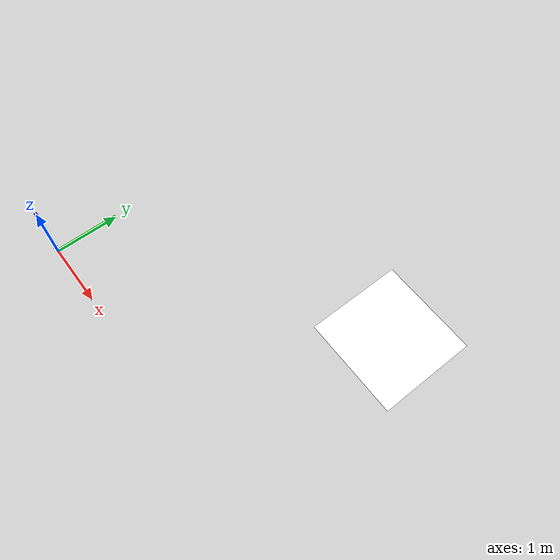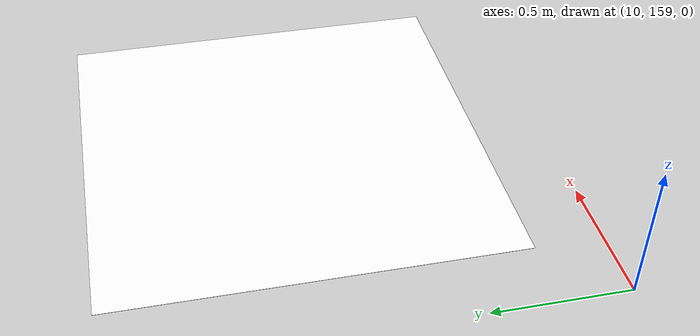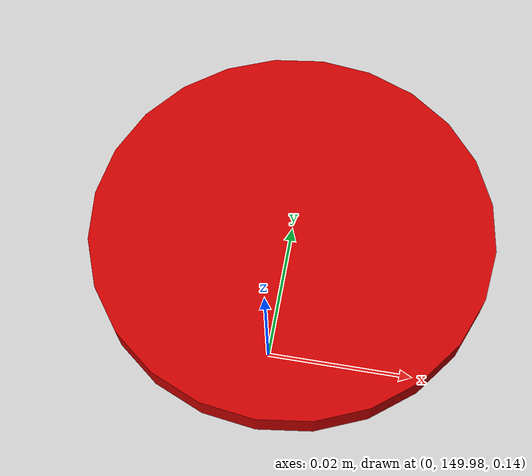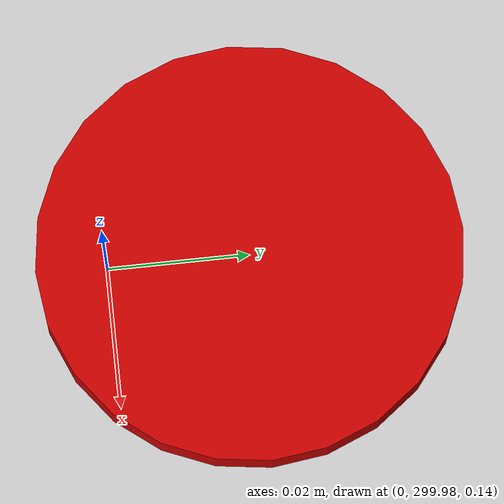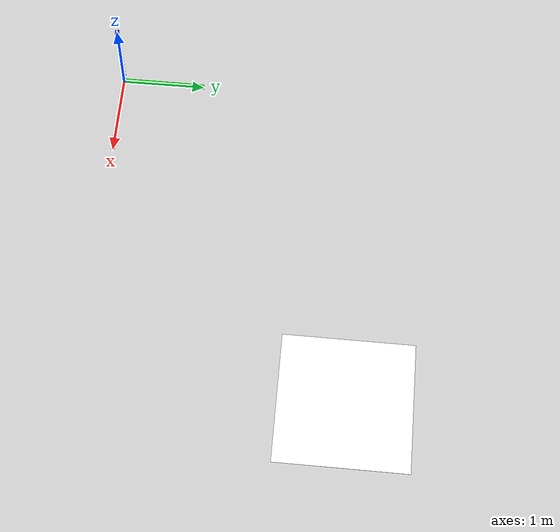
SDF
<?xml version="1.0" encoding="UTF-8"?>
<sdf version="1.9">
  <world name="x_marker_world">

    <physics type="ode">
      <max_step_size>0.004</max_step_size>
      <real_time_factor>1</real_time_factor>
      <real_time_update_rate>250</real_time_update_rate>
    </physics>

    <plugin name="gz::sim::systems::Physics"
            filename="gz-sim-physics-system"/>
    <plugin name="gz::sim::systems::UserCommands"
            filename="gz-sim-user-commands-system"/>
    <plugin name="gz::sim::systems::SceneBroadcaster"
            filename="gz-sim-scene-broadcaster-system"/>
    <plugin name="gz::sim::systems::Contact"
            filename="gz-sim-contact-system"/>

    <!-- Sensor systems: handle IMU, baro, GPS, magnetometer for PX4 SITL -->
    <plugin name="gz::sim::systems::Imu"
            filename="gz-sim-imu-system"/>
    <plugin name="gz::sim::systems::AirPressure"
            filename="gz-sim-air-pressure-system"/>
    <plugin name="gz::sim::systems::NavSat"
            filename="gz-sim-navsat-system"/>
    <plugin name="gz::sim::systems::Magnetometer"
            filename="gz-sim-magnetometer-system"/>

    <!-- Note: gz::sim::systems::DetachableJoint is a model-level plugin.
         It is defined inside x500_bombard/model.sdf on the drone model,
         not here at the world level. -->

    <!-- ============================================================
         GUI configuration (updated from Classic orbit camera)
    ============================================================ -->
    <gui fullscreen="false">
      <plugin filename="MinimalScene" name="3D View">
        <gz-gui>
          <title>3D View</title>
          <property type="bool" key="showTitleBar">false</property>
          <property type="string" key="state">docked</property>
        </gz-gui>
        <engine>ogre2</engine>
        <scene>scene</scene>
        <ambient_light>0.4 0.4 0.4</ambient_light>
        <background_color>0.7 0.7 0.7</background_color>
        <!-- Camera posed to view the x_marker at (11, 10) and drone spawn at origin -->
        <camera_pose>5 -5 5 0 0.615 2.356</camera_pose>
        <camera_clip>
          <near>0.25</near>
          <far>25000</far>
        </camera_clip>
      </plugin>
      <plugin filename="EntityContextMenuPlugin" name="Entity context menu">
        <gz-gui>
          <property key="state" type="string">floating</property>
          <property key="width" type="double">5</property>
          <property key="height" type="double">5</property>
          <property key="showTitleBar" type="bool">false</property>
        </gz-gui>
      </plugin>
      <plugin filename="GzSceneManager" name="Scene Manager">
        <gz-gui>
          <property key="resizable" type="bool">false</property>
          <property key="width" type="double">5</property>
          <property key="height" type="double">5</property>
          <property key="state" type="string">floating</property>
          <property key="showTitleBar" type="bool">false</property>
        </gz-gui>
      </plugin>
      <plugin filename="InteractiveViewControl" name="Interactive view control">
        <gz-gui>
          <property key="resizable" type="bool">false</property>
          <property key="width" type="double">5</property>
          <property key="height" type="double">5</property>
          <property key="state" type="string">floating</property>
          <property key="showTitleBar" type="bool">false</property>
        </gz-gui>
      </plugin>
      <plugin name="World control" filename="WorldControl">
        <gz-gui>
          <title>World control</title>
          <property type="bool" key="showTitleBar">0</property>
          <property type="bool" key="resizable">0</property>
          <property type="double" key="height">72</property>
          <property type="double" key="width">121</property>
          <property type="string" key="state">floating</property>
          <anchors target="3D View">
            <line own="left" target="left"/>
            <line own="bottom" target="bottom"/>
          </anchors>
        </gz-gui>
        <play_pause>1</play_pause>
        <step>1</step>
        <start_paused>0</start_paused>
      </plugin>
      <plugin name="World stats" filename="WorldStats">
        <gz-gui>
          <title>World stats</title>
          <property type="bool" key="showTitleBar">0</property>
          <property type="bool" key="resizable">0</property>
          <property type="double" key="height">110</property>
          <property type="double" key="width">290</property>
          <property type="string" key="state">floating</property>
          <anchors target="3D View">
            <line own="right" target="right"/>
            <line own="bottom" target="bottom"/>
          </anchors>
        </gz-gui>
        <sim_time>1</sim_time>
        <real_time>1</real_time>
        <real_time_factor>1</real_time_factor>
        <iterations>1</iterations>
      </plugin>
      <plugin name="Entity tree" filename="EntityTree"/>
    </gui>

    <!-- ============================================================
         Environment
    ============================================================ -->
    <gravity>0 0 -9.8066</gravity>
    <magnetic_field>6.0e-6 2.3e-5 -4.2e-5</magnetic_field>
    <atmosphere type="adiabatic"/>

    <!-- GPS origin: same as PX4 default (Zurich) -->
    <spherical_coordinates>
      <surface_model>EARTH_WGS84</surface_model>
      <world_frame_orientation>ENU</world_frame_orientation>
      <latitude_deg>47.397971057728974</latitude_deg>
      <longitude_deg>8.546163739800146</longitude_deg>
      <elevation>0</elevation>
    </spherical_coordinates>

    <!-- Scene settings -->
    <scene>
      <grid>true</grid>
      <ambient>0.4 0.4 0.4 1</ambient>
      <background>0.7 0.7 0.7 1</background>
      <shadows>true</shadows>
    </scene>

    <light name="sunUTC" type="directional">
      <pose>0 0 500 0 0 0</pose>
      <cast_shadows>true</cast_shadows>
      <intensity>1</intensity>
      <direction>0.001 0.625 -0.78</direction>
      <diffuse>0.904 0.904 0.904 1</diffuse>
      <specular>0.271 0.271 0.271 1</specular>
      <attenuation>
        <range>2000</range>
        <linear>0</linear>
        <constant>1</constant>
        <quadratic>0</quadratic>
      </attenuation>
    </light>

    <model name="ground_plane">
      <static>true</static>
      <link name="link">
        <collision name="collision">
          <geometry>
            <plane>
              <normal>0 0 1</normal>
              <size>1 1</size>
            </plane>
          </geometry>
        </collision>
        <visual name="visual">
          <geometry>
            <plane>
              <normal>0 0 1</normal>
              <size>200 200</size>
            </plane>
          </geometry>
          <material>
            <ambient>0.8 0.8 0.8 1</ambient>
            <diffuse>0.8 0.8 0.8 1</diffuse>
            <specular>0.8 0.8 0.8 1</specular>
          </material>
        </visual>
      </link>
    </model>

    <!-- X-marker targets (one per RL rank) -->
    <include>
      <uri>model://x_marker</uri>
      <name>x_marker_0</name>
      <pose>4 3 0 0 0 0</pose>
    </include>
    <include>
      <uri>model://x_marker</uri>
      <name>x_marker_1</name>
      <pose>11 160 0 0 0 0</pose>
    </include>
    <include>
      <uri>model://x_marker</uri>
      <name>x_marker_2</name>
      <pose>11 310 0 0 0 0</pose>
    </include>
    <include>
      <uri>model://x_marker</uri>
      <name>x_marker_3</name>
      <pose>11 460 0 0 0 0</pose>
    </include>

    <!-- Payloads (one per RL rank) — OdometryPublisher publishes /model/payload_N/odometry -->
    <include>
      <uri>model://payload_0</uri>
      <name>payload_0</name>
      <pose>0 0 0.14 0 0 0</pose>
    </include>
    <include>
      <uri>model://payload_1</uri>
      <name>payload_1</name>
      <pose>0 150 0.14 0 0 0</pose>
    </include>
    <include>
      <uri>model://payload_2</uri>
      <name>payload_2</name>
      <pose>0 300 0.14 0 0 0</pose>
    </include>
    <include>
      <uri>model://payload_3</uri>
      <name>payload_3</name>
      <pose>0 450 0.14 0 0 0</pose>
    </include>

    <model name="world_origin_axes">
      <static>true</static>
      <link name="x_axis">
        <pose>0.5 0 0.02 0 0 0</pose>
        <visual name="visual">
          <geometry>
            <box><size>1.0 0.04 0.04</size></box>
          </geometry>
          <material>
            <ambient>1.0 0.0 0.0 1</ambient>
            <diffuse>1.0 0.0 0.0 1</diffuse>
            <specular>0.3 0.0 0.0 1</specular>
          </material>
        </visual>
      </link>
      <link name="y_axis">
        <pose>0 0.5 0.02 0 0 0</pose>
        <visual name="visual">
          <geometry>
            <box><size>0.04 1.0 0.04</size></box>
          </geometry>
          <material>
            <ambient>0.0 1.0 0.0 1</ambient>
            <diffuse>0.0 1.0 0.0 1</diffuse>
            <specular>0.0 0.3 0.0 1</specular>
          </material>
        </visual>
      </link>
      <link name="z_axis">
        <pose>0 0 0.52 0 0 0</pose>
        <visual name="visual">
          <geometry>
            <box><size>0.04 0.04 1.0</size></box>
          </geometry>
          <material>
            <ambient>0.0 0.0 1.0 1</ambient>
            <diffuse>0.0 0.0 1.0 1</diffuse>
            <specular>0.0 0.0 0.3 1</specular>
          </material>
        </visual>
      </link>
    </model>

  </world>
</sdf>

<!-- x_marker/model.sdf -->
<sdf version="1.9">
  <model name="x_marker">
    <static>true</static>
    <link name="link">
      <pose>0 0 0.001 0 0 0</pose>

      <collision name="collision">
        <geometry>
          <box>
            <size>1.5 1.5 0.002</size>
          </box>
        </geometry>
      </collision>

      <!-- Single PBR-textured plane using x_marker.png (ogre2 compatible) -->
      <visual name="marker">
        <pose>0 0 0 0 0 0</pose>
        <geometry>
          <box>
            <size>1.5 1.5 0.001</size>
          </box>
        </geometry>
        <material>
          <diffuse>1 1 1 1</diffuse>
          <specular>0 0 0 1</specular>
          <pbr>
            <metal>
              <albedo_map>model://x_marker/materials/textures/x_marker.png</albedo_map>
              <metalness>0.0</metalness>
              <roughness>0.8</roughness>
            </metal>
          </pbr>
        </material>
      </visual>

    </link>
  </model>
</sdf>

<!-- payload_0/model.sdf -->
<sdf version="1.9">
  <model name="payload_0">

    <link name="payload_link">
      <self_collide>true</self_collide>
      <inertial>
        <mass>0.1</mass>
        <inertia>
          <ixx>0.0001</ixx><ixy>0</ixy><ixz>0</ixz>
          <iyy>0.0001</iyy><iyz>0</iyz>
          <izz>0.0001</izz>
        </inertia>
      </inertial>

      <visual name="payload_visual">
        <geometry>
           <cylinder><radius>0.03</radius><length>0.005</length></cylinder>
        </geometry>
        <material>
          <ambient>0.8 0.0 0.0 1</ambient>
          <diffuse>0.8 0.0 0.0 1</diffuse>
        </material>
      </visual>

      <collision name="payload_collision">
        <geometry>
           <cylinder><radius>0.029</radius><length>0.005</length></cylinder>
        </geometry>
        <surface>
          <contact>
            <ode>
              <kp>100000.0</kp>
              <kd>100.0</kd>
              <max_vel>0.0</max_vel>
              <min_depth>0.002</min_depth>
            </ode>
          </contact>
        </surface>
      </collision>
    </link>

    <!-- OdometryPublisher: publishes /model/payload_0/odometry (gz-transport)
         Bridged to ROS2 /drone/payload/position on domain 0 via per-instance bridge. -->
    <plugin name="gz::sim::systems::OdometryPublisher"
            filename="gz-sim-odometry-publisher-system">
      <odom_frame>world</odom_frame>
      <robot_base_frame>payload_0</robot_base_frame>
      <odom_publish_frequency>50</odom_publish_frequency>
      <dimensions>3</dimensions>
    </plugin>
  </model>
</sdf>

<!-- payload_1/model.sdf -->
<sdf version="1.9">
  <model name="payload_1">

    <link name="payload_link">
      <self_collide>true</self_collide>
      <inertial>
        <mass>0.1</mass>
        <inertia>
          <ixx>0.0001</ixx><ixy>0</ixy><ixz>0</ixz>
          <iyy>0.0001</iyy><iyz>0</iyz>
          <izz>0.0001</izz>
        </inertia>
      </inertial>

      <visual name="payload_visual">
        <geometry>
           <cylinder><radius>0.03</radius><length>0.005</length></cylinder>
        </geometry>
        <material>
          <ambient>0.8 0.0 0.0 1</ambient>
          <diffuse>0.8 0.0 0.0 1</diffuse>
        </material>
      </visual>

      <collision name="payload_collision">
        <geometry>
           <cylinder><radius>0.029</radius><length>0.005</length></cylinder>
        </geometry>
        <surface>
          <contact>
            <ode>
              <kp>100000.0</kp>
              <kd>100.0</kd>
              <max_vel>0.0</max_vel>
              <min_depth>0.002</min_depth>
            </ode>
          </contact>
        </surface>
      </collision>
    </link>

    <!-- OdometryPublisher: publishes /model/payload_1/odometry (gz-transport)
         Bridged to ROS2 /drone/payload/position on domain 1 via per-instance bridge. -->
    <plugin name="gz::sim::systems::OdometryPublisher"
            filename="gz-sim-odometry-publisher-system">
      <odom_frame>world</odom_frame>
      <robot_base_frame>payload_1</robot_base_frame>
      <odom_publish_frequency>50</odom_publish_frequency>
      <dimensions>3</dimensions>
    </plugin>
  </model>
</sdf>

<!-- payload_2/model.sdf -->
<sdf version="1.9">
  <model name="payload_2">

    <link name="payload_link">
      <self_collide>true</self_collide>
      <inertial>
        <mass>0.1</mass>
        <inertia>
          <ixx>0.0001</ixx><ixy>0</ixy><ixz>0</ixz>
          <iyy>0.0001</iyy><iyz>0</iyz>
          <izz>0.0001</izz>
        </inertia>
      </inertial>

      <visual name="payload_visual">
        <geometry>
           <cylinder><radius>0.03</radius><length>0.005</length></cylinder>
        </geometry>
        <material>
          <ambient>0.8 0.0 0.0 1</ambient>
          <diffuse>0.8 0.0 0.0 1</diffuse>
        </material>
      </visual>

      <collision name="payload_collision">
        <geometry>
           <cylinder><radius>0.029</radius><length>0.005</length></cylinder>
        </geometry>
        <surface>
          <contact>
            <ode>
              <kp>100000.0</kp>
              <kd>100.0</kd>
              <max_vel>0.0</max_vel>
              <min_depth>0.002</min_depth>
            </ode>
          </contact>
        </surface>
      </collision>
    </link>

    <!-- OdometryPublisher: publishes /model/payload_2/odometry (gz-transport)
         Bridged to ROS2 /drone/payload/position on domain 2 via per-instance bridge. -->
    <plugin name="gz::sim::systems::OdometryPublisher"
            filename="gz-sim-odometry-publisher-system">
      <odom_frame>world</odom_frame>
      <robot_base_frame>payload_2</robot_base_frame>
      <odom_publish_frequency>50</odom_publish_frequency>
      <dimensions>3</dimensions>
    </plugin>
  </model>
</sdf>

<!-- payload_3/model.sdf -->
<sdf version="1.9">
  <model name="payload_3">

    <link name="payload_link">
      <self_collide>true</self_collide>
      <inertial>
        <mass>0.1</mass>
        <inertia>
          <ixx>0.0001</ixx><ixy>0</ixy><ixz>0</ixz>
          <iyy>0.0001</iyy><iyz>0</iyz>
          <izz>0.0001</izz>
        </inertia>
      </inertial>

      <visual name="payload_visual">
        <geometry>
           <cylinder><radius>0.03</radius><length>0.005</length></cylinder>
        </geometry>
        <material>
          <ambient>0.8 0.0 0.0 1</ambient>
          <diffuse>0.8 0.0 0.0 1</diffuse>
        </material>
      </visual>

      <collision name="payload_collision">
        <geometry>
           <cylinder><radius>0.029</radius><length>0.005</length></cylinder>
        </geometry>
        <surface>
          <contact>
            <ode>
              <kp>100000.0</kp>
              <kd>100.0</kd>
              <max_vel>0.0</max_vel>
              <min_depth>0.002</min_depth>
            </ode>
          </contact>
        </surface>
      </collision>
    </link>

    <!-- OdometryPublisher: publishes /model/payload_3/odometry (gz-transport)
         Bridged to ROS2 /drone/payload/position on domain 3 via per-instance bridge. -->
    <plugin name="gz::sim::systems::OdometryPublisher"
            filename="gz-sim-odometry-publisher-system">
      <odom_frame>world</odom_frame>
      <robot_base_frame>payload_3</robot_base_frame>
      <odom_publish_frequency>50</odom_publish_frequency>
      <dimensions>3</dimensions>
    </plugin>
  </model>
</sdf>
